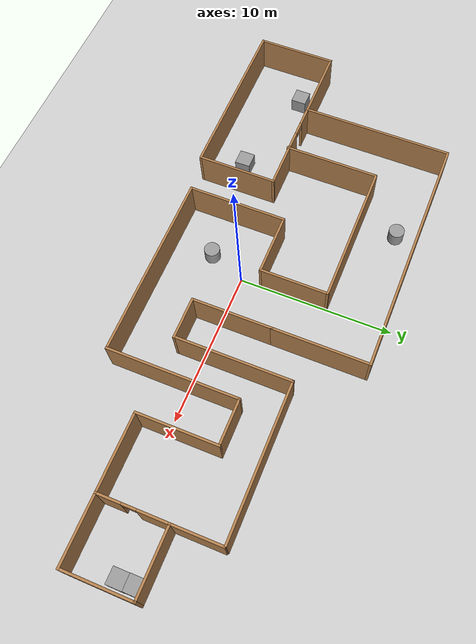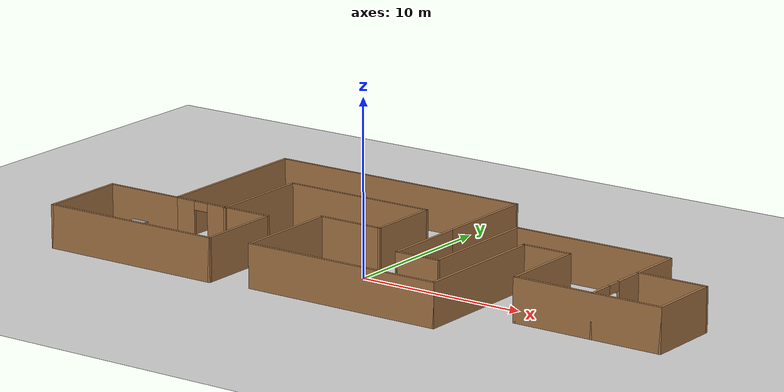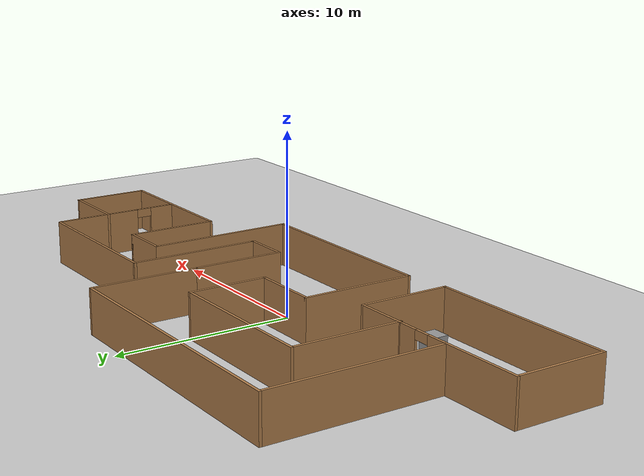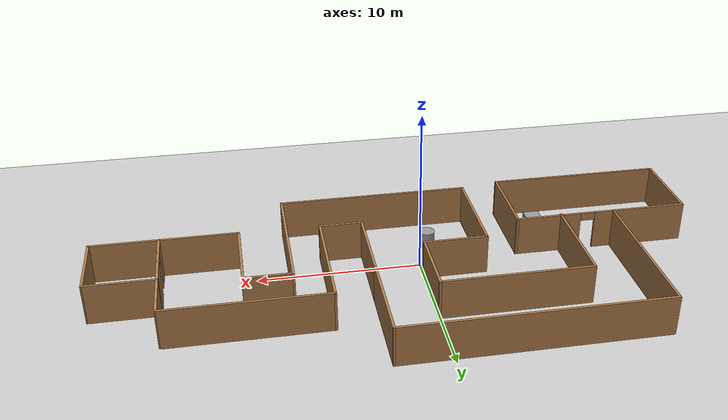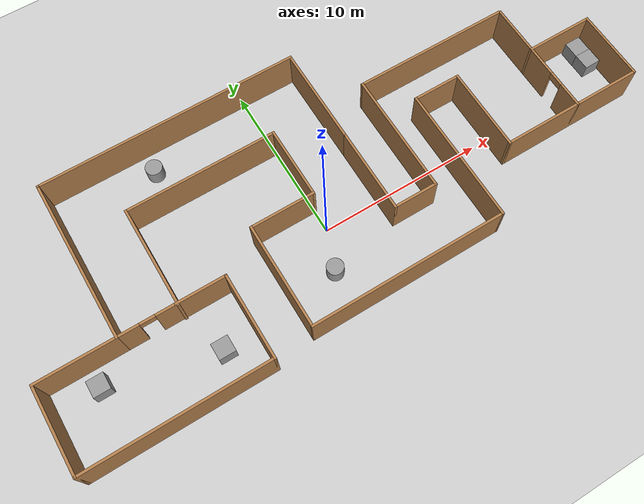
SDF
<sdf version="1.6">
 <world name="default">
  <light name="sun" type="directional">
   <pose>0 0 10 0 -0 0</pose>
   <diffuse>0.8 0.8 0.8 1</diffuse>
   <specular>0.2 0.2 0.2 1</specular>
   <attenuation>
    <range>1000</range>
    <constant>0.9</constant>
    <linear>0.01</linear>
    <quadratic>0.001</quadratic>
   </attenuation>
   <direction>-0.5 0.1 -0.9</direction>
  </light>
  <model name="ground_plane">
   <static>1</static>
   <link name="link">
    <collision name="collision">
     <geometry><plane><normal>0 0 1</normal><size>100 100</size></plane></geometry>
     <surface>
      <contact><collide_bitmask>65535</collide_bitmask></contact>
      <friction><ode><mu>100</mu><mu2>50</mu2></ode></friction>
     </surface>
    </collision>
    <visual name="visual">
     <cast_shadows>0</cast_shadows>
     <geometry><plane><normal>0 0 1</normal><size>100 100</size></plane></geometry>
     <material>
      <script><uri>file://media/materials/scripts/gazebo.material</uri><name>Gazebo/Grey</name></script>
     </material>
    </visual>
   </link>
  </model>
  <gravity>0 0 -9.8</gravity>
  <magnetic_field>6e-06 2.3e-05 -4.2e-05</magnetic_field>
  <atmosphere type="adiabatic"/>
  <physics name="default_physics" default="0" type="ode">
   <max_step_size>0.001</max_step_size>
   <real_time_factor>1</real_time_factor>
   <real_time_update_rate>1000</real_time_update_rate>
  </physics>
  <scene><ambient>0.4 0.4 0.4 1</ambient><background>0.7 0.7 0.7 1</background><shadows>1</shadows></scene>
  <audio><device>default</device></audio>
  <spherical_coordinates>
   <surface_model>EARTH_WGS84</surface_model>
   <latitude_deg>0</latitude_deg>
   <longitude_deg>0</longitude_deg>
   <elevation>0</elevation>
   <heading_deg>0</heading_deg>
  </spherical_coordinates>
  <model name="Untitled">
   <pose>1.328 2.08299 0 0 -0 0</pose>
   <link name="Wall_1">
    <collision name="Wall_1_Collision">
     <geometry><box><size>12 0.15 2.5</size></box></geometry>
     <pose>0 0 1.25 0 -0 0</pose>
    </collision>
    <visual name="Wall_1_Visual">
     <pose>0 0 1.25 0 -0 0</pose>
     <geometry><box><size>12 0.15 2.5</size></box></geometry>
     <material>
      <script><uri>file://media/materials/scripts/gazebo.material</uri><name>Gazebo/Wood</name></script>
      <ambient>1 1 1 1</ambient>
     </material>
     <meta><layer>0</layer></meta>
    </visual>
    <pose>0.788015 -7.05483 0 0 -0 0</pose>
   </link>
   <link name="Wall_11">
    <collision name="Wall_11_Collision">
     <geometry><box><size>4.5 0.15 2.5</size></box></geometry>
     <pose>0 0 1.25 0 -0 0</pose>
    </collision>
    <visual name="Wall_11_Visual">
     <pose>0 0 1.25 0 -0 0</pose>
     <geometry><box><size>4.5 0.15 2.5</size></box></geometry>
     <material>
      <script><uri>file://media/materials/scripts/gazebo.material</uri><name>Gazebo/Wood</name></script>
      <ambient>1 1 1 1</ambient>
     </material>
     <meta><layer>0</layer></meta>
    </visual>
    <pose>-1.28699 1.47017 0 0 -0 1.5708</pose>
   </link>
   <link name="Wall_12">
    <collision name="Wall_12_Collision">
     <geometry><box><size>9.25 0.15 2.5</size></box></geometry>
     <pose>0 0 1.25 0 -0 0</pose>
    </collision>
    <visual name="Wall_12_Visual">
     <pose>0 0 1.25 0 -0 0</pose>
     <geometry><box><size>9.25 0.15 2.5</size></box></geometry>
     <material>
      <script><uri>file://media/materials/scripts/gazebo.material</uri><name>Gazebo/Wood</name></script>
      <ambient>1 1 1 1</ambient>
     </material>
     <meta><layer>0</layer></meta>
    </visual>
    <pose>-5.83699 3.64517 0 0 -0 3.14159</pose>
   </link>
   <link name="Wall_14">
    <collision name="Wall_14_Collision">
     <geometry><box><size>6.25 0.15 2.5</size></box></geometry>
     <pose>0 0 1.25 0 -0 0</pose>
    </collision>
    <visual name="Wall_14_Visual">
     <pose>0 0 1.25 0 -0 0</pose>
     <geometry><box><size>6.25 0.15 2.5</size></box></geometry>
     <material>
      <script><uri>file://media/materials/scripts/gazebo.material</uri><name>Gazebo/Wood</name></script>
      <ambient>1 1 1 1</ambient>
     </material>
     <meta><layer>0</layer></meta>
    </visual>
    <pose>-10.387 0.595174 0 0 -0 -1.5708</pose>
   </link>
   <link name="Wall_18">
    <collision name="Wall_18_Collision">
     <geometry><box><size>7.5 0.15 2.5</size></box></geometry>
     <pose>0 0 1.25 0 -0 0</pose>
    </collision>
    <visual name="Wall_18_Visual">
     <pose>0 0 1.25 0 -0 0</pose>
     <geometry><box><size>7.5 0.15 2.5</size></box></geometry>
     <material>
      <script><uri>file://media/materials/scripts/gazebo.material</uri><name>Gazebo/Wood</name></script>
      <ambient>1 1 1 1</ambient>
     </material>
     <meta><layer>0</layer></meta>
    </visual>
    <pose>4.63029 0.025421 0 0 -0 -1.5708</pose>
   </link>
   <link name="Wall_21">
    <collision name="Wall_21_Collision">
     <geometry><box><size>2.75 0.15 2.5</size></box></geometry>
     <pose>0 0 1.25 0 -0 0</pose>
    </collision>
    <visual name="Wall_21_Visual">
     <pose>0 0 1.25 0 -0 0</pose>
     <geometry><box><size>2.75 0.15 2.5</size></box></geometry>
     <material>
      <script><uri>file://media/materials/scripts/gazebo.material</uri><name>Gazebo/Wood</name></script>
      <ambient>1 1 1 1</ambient>
     </material>
     <meta><layer>0</layer></meta>
    </visual>
    <pose>3.33698 -3.725 0 0 -0 0</pose>
   </link>
   <link name="Wall_25">
    <collision name="Wall_25_Collision">
     <geometry><box><size>8.5 0.15 2.5</size></box></geometry>
     <pose>0 0 1.25 0 -0 0</pose>
    </collision>
    <visual name="Wall_25_Visual">
     <pose>0 0 1.25 0 -0 0</pose>
     <geometry><box><size>8.5 0.15 2.5</size></box></geometry>
     <material>
      <script><uri>file://media/materials/scripts/gazebo.material</uri><name>Gazebo/Wood</name></script>
      <ambient>1 1 1 1</ambient>
     </material>
     <meta><layer>0</layer></meta>
    </visual>
    <pose>6.71302 -2.87983 0 0 -0 1.5708</pose>
   </link>
   <link name="Wall_27">
    <collision name="Wall_27_Collision">
     <geometry><box><size>3 0.15 2.5</size></box></geometry>
     <pose>0 0 1.25 0 -0 0</pose>
    </collision>
    <visual name="Wall_27_Visual">
     <pose>0 0 1.25 0 -0 0</pose>
     <geometry><box><size>3 0.15 2.5</size></box></geometry>
     <material>
      <script><uri>file://media/materials/scripts/gazebo.material</uri><name>Gazebo/Wood</name></script>
      <ambient>1 1 1 1</ambient>
     </material>
     <meta><layer>0</layer></meta>
    </visual>
    <pose>8.13801 1.29517 0 0 -0 0</pose>
   </link>
   <link name="Wall_28">
    <collision name="Wall_28_Collision">
     <geometry><box><size>5.25 0.15 2.5</size></box></geometry>
     <pose>0 0 1.25 0 -0 0</pose>
    </collision>
    <visual name="Wall_28_Visual">
     <pose>0 0 1.25 0 -0 0</pose>
     <geometry><box><size>5.25 0.15 2.5</size></box></geometry>
     <material>
      <script><uri>file://media/materials/scripts/gazebo.material</uri><name>Gazebo/Wood</name></script>
      <ambient>1 1 1 1</ambient>
     </material>
     <meta><layer>0</layer></meta>
    </visual>
    <pose>9.56302 -1.25483 0 0 -0 -1.5708</pose>
   </link>
   <link name="Wall_29">
    <collision name="Wall_29_Collision">
     <geometry><box><size>9 0.15 2.5</size></box></geometry>
     <pose>0 0 1.25 0 -0 0</pose>
    </collision>
    <visual name="Wall_29_Visual">
     <pose>0 0 1.25 0 -0 0</pose>
     <geometry><box><size>9 0.15 2.5</size></box></geometry>
     <material>
      <script><uri>file://media/materials/scripts/gazebo.material</uri><name>Gazebo/Wood</name></script>
      <ambient>1 1 1 1</ambient>
     </material>
     <meta><layer>0</layer></meta>
    </visual>
    <pose>13.988 -3.80483 0 0 -0 0</pose>
   </link>
   <link name="Wall_3">
    <collision name="Wall_3_Collision">
     <geometry><box><size>6.5 0.15 2.5</size></box></geometry>
     <pose>0 0 1.25 0 -0 0</pose>
    </collision>
    <visual name="Wall_3_Visual">
     <pose>0 0 1.25 0 -0 0</pose>
     <geometry><box><size>6.5 0.15 2.5</size></box></geometry>
     <material>
      <script><uri>file://media/materials/scripts/gazebo.material</uri><name>Gazebo/Wood</name></script>
      <ambient>1 1 1 1</ambient>
     </material>
     <meta><layer>0</layer></meta>
    </visual>
    <pose>-5.13699 -3.87983 0 0 -0 1.5708</pose>
   </link>
   <link name="Wall_30">
    <collision name="Wall_30_Collision">
     <geometry><box><size>4.5 0.15 2.5</size></box></geometry>
     <pose>0 0 1.25 0 -0 0</pose>
    </collision>
    <visual name="Wall_30_Visual">
     <pose>0 0 1.25 0 -0 0</pose>
     <geometry><box><size>4.5 0.15 2.5</size></box></geometry>
     <material>
      <script><uri>file://media/materials/scripts/gazebo.material</uri><name>Gazebo/Wood</name></script>
      <ambient>1 1 1 1</ambient>
     </material>
     <meta><layer>0</layer></meta>
    </visual>
    <pose>18.413 -1.62983 0 0 -0 1.5708</pose>
   </link>
   <link name="Wall_31">
    <collision name="Wall_31_Collision">
     <geometry><box><size>4.25 0.15 2.5</size></box></geometry>
     <pose>0 0 1.25 0 -0 0</pose>
    </collision>
    <visual name="Wall_31_Visual">
     <pose>0 0 1.25 0 -0 0</pose>
     <geometry><box><size>4.25 0.15 2.5</size></box></geometry>
     <material>
      <script><uri>file://media/materials/scripts/gazebo.material</uri><name>Gazebo/Wood</name></script>
      <ambient>1 1 1 1</ambient>
     </material>
     <meta><layer>0</layer></meta>
    </visual>
    <pose>16.363 0.545174 0 0 -0 3.14159</pose>
   </link>
   <link name="Wall_32">
    <pose>14.313 -1.62983 0 0 -0 -1.5708</pose>
    <visual name="Wall_32_Visual_0">
     <pose>-1.24722 0 1.25 0 -0 0</pose>
     <geometry><box><size>2.00556 0.15 2.5</size></box></geometry>
     <material>
      <script><uri>file://media/materials/scripts/gazebo.material</uri><name>Gazebo/Wood</name></script>
      <ambient>1 1 1 1</ambient>
     </material>
     <meta><layer>0</layer></meta>
    </visual>
    <collision name="Wall_32_Collision_0">
     <geometry><box><size>2.00556 0.15 2.5</size></box></geometry>
     <pose>-1.24722 0 1.25 0 -0 0</pose>
    </collision>
    <visual name="Wall_32_Visual_1">
     <pose>1.45278 0 1.25 0 -0 0</pose>
     <geometry><box><size>1.59444 0.15 2.5</size></box></geometry>
     <material>
      <script><uri>file://media/materials/scripts/gazebo.material</uri><name>Gazebo/Wood</name></script>
      <ambient>1 1 1 1</ambient>
     </material>
     <meta><layer>0</layer></meta>
    </visual>
    <collision name="Wall_32_Collision_1">
     <geometry><box><size>1.59444 0.15 2.5</size></box></geometry>
     <pose>1.45278 0 1.25 0 -0 0</pose>
    </collision>
    <visual name="Wall_32_Visual_2">
     <pose>0.205558 0 2.25 0 -0 0</pose>
     <geometry><box><size>0.9 0.15 0.5</size></box></geometry>
     <material>
      <script><uri>file://media/materials/scripts/gazebo.material</uri><name>Gazebo/Wood</name></script>
      <ambient>1 1 1 1</ambient>
     </material>
     <meta><layer>0</layer></meta>
    </visual>
    <collision name="Wall_32_Collision_2">
     <geometry><box><size>0.9 0.15 0.5</size></box></geometry>
     <pose>0.205558 0 2.25 0 -0 0</pose>
    </collision>
   </link>
   <link name="Wall_36">
    <collision name="Wall_36_Collision">
     <geometry><box><size>3.25 0.15 2.5</size></box></geometry>
     <pose>0 0 1.25 0 -0 0</pose>
    </collision>
    <visual name="Wall_36_Visual">
     <pose>0 0 1.25 0 -0 0</pose>
     <geometry><box><size>3.25 0.15 2.5</size></box></geometry>
     <material>
      <script><uri>file://media/materials/scripts/gazebo.material</uri><name>Gazebo/Wood</name></script>
      <ambient>1 1 1 1</ambient>
     </material>
     <meta><layer>0</layer></meta>
    </visual>
    <pose>14.313 2.09517 0 0 -0 1.5708</pose>
   </link>
   <link name="Wall_38">
    <collision name="Wall_38_Collision">
     <geometry><box><size>9.75 0.15 2.5</size></box></geometry>
     <pose>0 0 1.25 0 -0 0</pose>
    </collision>
    <visual name="Wall_38_Visual">
     <pose>0 0 1.25 0 -0 0</pose>
     <geometry><box><size>9.75 0.15 2.5</size></box></geometry>
     <material>
      <script><uri>file://media/materials/scripts/gazebo.material</uri><name>Gazebo/Wood</name></script>
      <ambient>1 1 1 1</ambient>
     </material>
     <meta><layer>0</layer></meta>
    </visual>
    <pose>9.43028 3.70042 0 0 -0 0</pose>
   </link>
   <link name="Wall_40">
    <collision name="Wall_40_Collision">
     <geometry><box><size>6.25 0.15 2.5</size></box></geometry>
     <pose>0 0 1.25 0 -0 0</pose>
    </collision>
    <visual name="Wall_40_Visual">
     <pose>0 0 1.25 0 -0 0</pose>
     <geometry><box><size>6.25 0.15 2.5</size></box></geometry>
     <material>
      <script><uri>file://media/materials/scripts/gazebo.material</uri><name>Gazebo/Wood</name></script>
      <ambient>1 1 1 1</ambient>
     </material>
     <meta><layer>0</layer></meta>
    </visual>
    <pose>2.03698 4.425 0 0 -0 1.5708</pose>
   </link>
   <link name="Wall_41">
    <collision name="Wall_41_Collision">
     <geometry><box><size>16 0.15 2.5</size></box></geometry>
     <pose>0 0 1.25 0 -0 0</pose>
    </collision>
    <visual name="Wall_41_Visual">
     <pose>0 0 1.25 0 -0 0</pose>
     <geometry><box><size>16 0.15 2.5</size></box></geometry>
     <material>
      <script><uri>file://media/materials/scripts/gazebo.material</uri><name>Gazebo/Wood</name></script>
      <ambient>1 1 1 1</ambient>
     </material>
     <meta><layer>0</layer></meta>
    </visual>
    <pose>-5.88802 7.475 0 0 -0 3.14159</pose>
   </link>
   <link name="Wall_42">
    <collision name="Wall_42_Collision">
     <geometry><box><size>10 0.15 2.5</size></box></geometry>
     <pose>0 0 1.25 0 -0 0</pose>
    </collision>
    <visual name="Wall_42_Visual">
     <pose>0 0 1.25 0 -0 0</pose>
     <geometry><box><size>10 0.15 2.5</size></box></geometry>
     <material>
      <script><uri>file://media/materials/scripts/gazebo.material</uri><name>Gazebo/Wood</name></script>
      <ambient>1 1 1 1</ambient>
     </material>
     <meta><layer>0</layer></meta>
    </visual>
    <pose>-13.813 2.55 0 0 -0 -1.5708</pose>
   </link>
   <link name="Wall_43">
    <pose>-12.138 -2.375 0 0 -0 0</pose>
    <visual name="Wall_43_Visual_0">
     <pose>-1.08094 0 1.25 0 -0 0</pose>
     <geometry><box><size>1.33812 0.15 2.5</size></box></geometry>
     <material>
      <script><uri>file://media/materials/scripts/gazebo.material</uri><name>Gazebo/Wood</name></script>
      <ambient>1 1 1 1</ambient>
     </material>
     <meta><layer>0</layer></meta>
    </visual>
    <collision name="Wall_43_Collision_0">
     <geometry><box><size>1.33812 0.15 2.5</size></box></geometry>
     <pose>-1.08094 0 1.25 0 -0 0</pose>
    </collision>
    <visual name="Wall_43_Visual_1">
     <pose>1.11906 0 1.25 0 -0 0</pose>
     <geometry><box><size>1.26188 0.15 2.5</size></box></geometry>
     <material>
      <script><uri>file://media/materials/scripts/gazebo.material</uri><name>Gazebo/Wood</name></script>
      <ambient>1 1 1 1</ambient>
     </material>
     <meta><layer>0</layer></meta>
    </visual>
    <collision name="Wall_43_Collision_1">
     <geometry><box><size>1.26188 0.15 2.5</size></box></geometry>
     <pose>1.11906 0 1.25 0 -0 0</pose>
    </collision>
    <visual name="Wall_43_Visual_2">
     <pose>0.038119 0 2.25 0 -0 0</pose>
     <geometry><box><size>0.9 0.15 0.5</size></box></geometry>
     <material>
      <script><uri>file://media/materials/scripts/gazebo.material</uri><name>Gazebo/Wood</name></script>
      <ambient>1 1 1 1</ambient>
     </material>
     <meta><layer>0</layer></meta>
    </visual>
    <collision name="Wall_43_Collision_2">
     <geometry><box><size>0.9 0.15 0.5</size></box></geometry>
     <pose>0.038119 0 2.25 0 -0 0</pose>
    </collision>
   </link>
   <link name="Wall_45">
    <collision name="Wall_45_Collision">
     <geometry><box><size>4.75 0.15 2.5</size></box></geometry>
     <pose>0 0 1.25 0 -0 0</pose>
    </collision>
    <visual name="Wall_45_Visual">
     <pose>0 0 1.25 0 -0 0</pose>
     <geometry><box><size>4.75 0.15 2.5</size></box></geometry>
     <material>
      <script><uri>file://media/materials/scripts/gazebo.material</uri><name>Gazebo/Wood</name></script>
      <ambient>1 1 1 1</ambient>
     </material>
     <meta><layer>0</layer></meta>
    </visual>
    <pose>-16.113 -2.375 0 0 -0 3.14159</pose>
   </link>
   <link name="Wall_46">
    <collision name="Wall_46_Collision">
     <geometry><box><size>5.25 0.15 2.5</size></box></geometry>
     <pose>0 0 1.25 0 -0 0</pose>
    </collision>
    <visual name="Wall_46_Visual">
     <pose>0 0 1.25 0 -0 0</pose>
     <geometry><box><size>5.25 0.15 2.5</size></box></geometry>
     <material>
      <script><uri>file://media/materials/scripts/gazebo.material</uri><name>Gazebo/Wood</name></script>
      <ambient>1 1 1 1</ambient>
     </material>
     <meta><layer>0</layer></meta>
    </visual>
    <pose>-18.413 -4.925 0 0 -0 -1.5708</pose>
   </link>
   <link name="Wall_47">
    <collision name="Wall_47_Collision">
     <geometry><box><size>11 0.15 2.5</size></box></geometry>
     <pose>0 0 1.25 0 -0 0</pose>
    </collision>
    <visual name="Wall_47_Visual">
     <pose>0 0 1.25 0 -0 0</pose>
     <geometry><box><size>11 0.15 2.5</size></box></geometry>
     <material>
      <script><uri>file://media/materials/scripts/gazebo.material</uri><name>Gazebo/Wood</name></script>
      <ambient>1 1 1 1</ambient>
     </material>
     <meta><layer>0</layer></meta>
    </visual>
    <pose>-12.988 -7.475 0 0 -0 0</pose>
   </link>
   <link name="Wall_48">
    <collision name="Wall_48_Collision">
     <geometry><box><size>5.25 0.15 2.5</size></box></geometry>
     <pose>0 0 1.25 0 -0 0</pose>
    </collision>
    <visual name="Wall_48_Visual">
     <pose>0 0 1.25 0 -0 0</pose>
     <geometry><box><size>5.25 0.15 2.5</size></box></geometry>
     <material>
      <script><uri>file://media/materials/scripts/gazebo.material</uri><name>Gazebo/Wood</name></script>
      <ambient>1 1 1 1</ambient>
     </material>
     <meta><layer>0</layer></meta>
    </visual>
    <pose>-7.56302 -4.925 0 0 -0 1.5708</pose>
   </link>
   <link name="Wall_49">
    <collision name="Wall_49_Collision">
     <geometry><box><size>3.05 0.15 2.5</size></box></geometry>
     <pose>0 0 1.25 0 -0 0</pose>
    </collision>
    <visual name="Wall_49_Visual">
     <pose>0 0 1.25 0 -0 0</pose>
     <geometry><box><size>3.05 0.15 2.5</size></box></geometry>
     <material>
      <script><uri>file://media/materials/scripts/gazebo.material</uri><name>Gazebo/Wood</name></script>
      <ambient>1 1 1 1</ambient>
     </material>
     <meta><layer>0</layer></meta>
    </visual>
    <pose>-9.01302 -2.375 0 0 -0 3.14159</pose>
   </link>
   <link name="Wall_7">
    <collision name="Wall_7_Collision">
     <geometry><box><size>5.25 0.15 2.5</size></box></geometry>
     <pose>0 0 1.25 0 -0 0</pose>
    </collision>
    <visual name="Wall_7_Visual">
     <pose>0 0 1.25 0 -0 0</pose>
     <geometry><box><size>5.25 0.15 2.5</size></box></geometry>
     <material>
      <script><uri>file://media/materials/scripts/gazebo.material</uri><name>Gazebo/Wood</name></script>
      <ambient>1 1 1 1</ambient>
     </material>
     <meta><layer>0</layer></meta>
    </visual>
    <pose>2.03698 -1.175 0 0 -0 -1.5708</pose>
   </link>
   <link name="Wall_9">
    <collision name="Wall_9_Collision">
     <geometry><box><size>4 0.15 2.5</size></box></geometry>
     <pose>0 0 1.25 0 -0 0</pose>
    </collision>
    <visual name="Wall_9_Visual">
     <pose>0 0 1.25 0 -0 0</pose>
     <geometry><box><size>4 0.15 2.5</size></box></geometry>
     <material>
      <script><uri>file://media/materials/scripts/gazebo.material</uri><name>Gazebo/Wood</name></script>
      <ambient>1 1 1 1</ambient>
     </material>
     <meta><layer>0</layer></meta>
    </visual>
    <pose>-3.21198 -0.704826 0 0 -0 0</pose>
   </link>
   <static>1</static>
  </model>
  <model name="ex1.model">
   <link name="link">
    <inertial>
     <mass>1</mass>
     <inertia>
      <ixx>0.166667</ixx>
      <ixy>0</ixy>
      <ixz>0</ixz>
      <iyy>0.166667</iyy>
      <iyz>0</iyz>
      <izz>0.166667</izz>
     </inertia>
    </inertial>
    <visual name="visual">
     <geometry><box><size>1 1 1</size></box></geometry>
     <material>
      <script><name>Gazebo/Grey</name><uri>file://media/materials/scripts/gazebo.material</uri></script>
     </material>
    </visual>
    <collision name="collision">
     <geometry><box><size>1 1 1</size></box></geometry>
     <surface>
      <friction>
       <ode><mu>1</mu><mu2>1</mu2><fdir1>0 0 0</fdir1><slip1>0</slip1><slip2>0</slip2></ode>
       <torsional>
        <coefficient>1</coefficient>
        <patch_radius>0</patch_radius>
        <surface_radius>0</surface_radius>
        <use_patch_radius>1</use_patch_radius>
        <ode><slip>0</slip></ode>
       </torsional>
      </friction>
      <bounce><restitution_coefficient>0</restitution_coefficient><threshold>1e+06</threshold></bounce>
      <contact>
       <collide_without_contact>0</collide_without_contact>
       <collide_without_contact_bitmask>1</collide_without_contact_bitmask>
       <collide_bitmask>1</collide_bitmask>
       <ode>
        <soft_cfm>0</soft_cfm>
        <soft_erp>0.2</soft_erp>
        <kp>1e+13</kp>
        <kd>1</kd>
        <max_vel>0.01</max_vel>
        <min_depth>0</min_depth>
       </ode>
       <bullet>
        <split_impulse>1</split_impulse>
        <split_impulse_penetration_threshold>-0.01</split_impulse_penetration_threshold>
        <soft_cfm>0</soft_cfm>
        <soft_erp>0.2</soft_erp>
        <kp>1e+13</kp>
        <kd>1</kd>
       </bullet>
      </contact>
     </surface>
    </collision>
   </link>
   <link name="link_0">
    <inertial>
     <mass>1</mass>
     <inertia><ixx>0.145833</ixx><ixy>0</ixy><ixz>0</ixz><iyy>0.145833</iyy><iyz>0</iyz><izz>0.125</izz></inertia>
    </inertial>
    <pose>1.61294 11.2922 0 0 -0 0</pose>
    <visual name="visual">
     <geometry><cylinder><radius>0.5</radius><length>1</length></cylinder></geometry>
     <material>
      <lighting>1</lighting>
      <script><uri>file://media/materials/scripts/gazebo.material</uri><name>Gazebo/Grey</name></script>
     </material>
    </visual>
    <collision name="collision">
     <geometry><cylinder><radius>0.5</radius><length>1</length></cylinder></geometry>
     <surface>
      <friction>
       <ode><mu>1</mu><mu2>1</mu2><fdir1>0 0 0</fdir1><slip1>0</slip1><slip2>0</slip2></ode>
       <torsional>
        <coefficient>1</coefficient>
        <patch_radius>0</patch_radius>
        <surface_radius>0</surface_radius>
        <use_patch_radius>1</use_patch_radius>
        <ode><slip>0</slip></ode>
       </torsional>
      </friction>
      <bounce><restitution_coefficient>0</restitution_coefficient><threshold>1e+06</threshold></bounce>
      <contact>
       <collide_without_contact>0</collide_without_contact>
       <collide_without_contact_bitmask>1</collide_without_contact_bitmask>
       <collide_bitmask>1</collide_bitmask>
       <ode>
        <soft_cfm>0</soft_cfm>
        <soft_erp>0.2</soft_erp>
        <kp>1e+13</kp>
        <kd>1</kd>
        <max_vel>0.01</max_vel>
        <min_depth>0</min_depth>
       </ode>
       <bullet>
        <split_impulse>1</split_impulse>
        <split_impulse_penetration_threshold>-0.01</split_impulse_penetration_threshold>
        <soft_cfm>0</soft_cfm>
        <soft_erp>0.2</soft_erp>
        <kp>1e+13</kp>
        <kd>1</kd>
       </bullet>
      </contact>
     </surface>
    </collision>
   </link>
   <link name="link_1">
    <inertial>
     <mass>1</mass>
     <inertia><ixx>0.145833</ixx><ixy>0</ixy><ixz>0</ixz><iyy>0.145833</iyy><iyz>0</iyz><izz>0.125</izz></inertia>
    </inertial>
    <pose>7.25456 0.758957 0 0 -0 0</pose>
    <visual name="visual">
     <geometry><cylinder><radius>0.5</radius><length>1</length></cylinder></geometry>
     <material>
      <lighting>1</lighting>
      <script><uri>file://media/materials/scripts/gazebo.material</uri><name>Gazebo/Grey</name></script>
     </material>
    </visual>
    <collision name="collision">
     <geometry><cylinder><radius>0.5</radius><length>1</length></cylinder></geometry>
     <surface>
      <friction>
       <ode><mu>1</mu><mu2>1</mu2><fdir1>0 0 0</fdir1><slip1>0</slip1><slip2>0</slip2></ode>
       <torsional>
        <coefficient>1</coefficient>
        <patch_radius>0</patch_radius>
        <surface_radius>0</surface_radius>
        <use_patch_radius>1</use_patch_radius>
        <ode><slip>0</slip></ode>
       </torsional>
      </friction>
      <bounce><restitution_coefficient>0</restitution_coefficient><threshold>1e+06</threshold></bounce>
      <contact>
       <collide_without_contact>0</collide_without_contact>
       <collide_without_contact_bitmask>1</collide_without_contact_bitmask>
       <collide_bitmask>1</collide_bitmask>
       <ode>
        <soft_cfm>0</soft_cfm>
        <soft_erp>0.2</soft_erp>
        <kp>1e+13</kp>
        <kd>1</kd>
        <max_vel>0.01</max_vel>
        <min_depth>0</min_depth>
       </ode>
       <bullet>
        <split_impulse>1</split_impulse>
        <split_impulse_penetration_threshold>-0.01</split_impulse_penetration_threshold>
        <soft_cfm>0</soft_cfm>
        <soft_erp>0.2</soft_erp>
        <kp>1e+13</kp>
        <kd>1</kd>
       </bullet>
      </contact>
     </surface>
    </collision>
   </link>
   <link name="link_2">
    <inertial>
     <mass>1</mass>
     <inertia>
      <ixx>0.166667</ixx>
      <ixy>0</ixy>
      <ixz>0</ixz>
      <iyy>0.166667</iyy>
      <iyz>0</iyz>
      <izz>0.166667</izz>
     </inertia>
    </inertial>
    <pose>27.1518 5.11795 0 0 -0 0</pose>
    <visual name="visual">
     <geometry><box><size>1 1 1</size></box></geometry>
     <material>
      <lighting>1</lighting>
      <script><uri>file://media/materials/scripts/gazebo.material</uri><name>Gazebo/Grey</name></script>
     </material>
    </visual>
    <collision name="collision">
     <geometry><box><size>1 1 1</size></box></geometry>
     <surface>
      <friction>
       <ode><mu>1</mu><mu2>1</mu2><fdir1>0 0 0</fdir1><slip1>0</slip1><slip2>0</slip2></ode>
       <torsional>
        <coefficient>1</coefficient>
        <patch_radius>0</patch_radius>
        <surface_radius>0</surface_radius>
        <use_patch_radius>1</use_patch_radius>
        <ode><slip>0</slip></ode>
       </torsional>
      </friction>
      <bounce><restitution_coefficient>0</restitution_coefficient><threshold>1e+06</threshold></bounce>
      <contact>
       <collide_without_contact>0</collide_without_contact>
       <collide_without_contact_bitmask>1</collide_without_contact_bitmask>
       <collide_bitmask>1</collide_bitmask>
       <ode>
        <soft_cfm>0</soft_cfm>
        <soft_erp>0.2</soft_erp>
        <kp>1e+13</kp>
        <kd>1</kd>
        <max_vel>0.01</max_vel>
        <min_depth>0</min_depth>
       </ode>
       <bullet>
        <split_impulse>1</split_impulse>
        <split_impulse_penetration_threshold>-0.01</split_impulse_penetration_threshold>
        <soft_cfm>0</soft_cfm>
        <soft_erp>0.2</soft_erp>
        <kp>1e+13</kp>
        <kd>1</kd>
       </bullet>
      </contact>
     </surface>
    </collision>
   </link>
   <link name="link_3">
    <inertial>
     <mass>1</mass>
     <inertia>
      <ixx>0.166667</ixx>
      <ixy>0</ixy>
      <ixz>0</ixz>
      <iyy>0.166667</iyy>
      <iyz>0</iyz>
      <izz>0.166667</izz>
     </inertia>
    </inertial>
    <pose>27.1665 4.13017 0 0 -0 0</pose>
    <visual name="visual">
     <geometry><box><size>1 1 1</size></box></geometry>
     <material>
      <lighting>1</lighting>
      <script><uri>file://media/materials/scripts/gazebo.material</uri><name>Gazebo/Grey</name></script>
     </material>
    </visual>
    <collision name="collision">
     <geometry><box><size>1 1 1</size></box></geometry>
     <surface>
      <friction>
       <ode><mu>1</mu><mu2>1</mu2><fdir1>0 0 0</fdir1><slip1>0</slip1><slip2>0</slip2></ode>
       <torsional>
        <coefficient>1</coefficient>
        <patch_radius>0</patch_radius>
        <surface_radius>0</surface_radius>
        <use_patch_radius>1</use_patch_radius>
        <ode><slip>0</slip></ode>
       </torsional>
      </friction>
      <bounce><restitution_coefficient>0</restitution_coefficient><threshold>1e+06</threshold></bounce>
      <contact>
       <collide_without_contact>0</collide_without_contact>
       <collide_without_contact_bitmask>1</collide_without_contact_bitmask>
       <collide_bitmask>1</collide_bitmask>
       <ode>
        <soft_cfm>0</soft_cfm>
        <soft_erp>0.2</soft_erp>
        <kp>1e+13</kp>
        <kd>1</kd>
        <max_vel>0.01</max_vel>
        <min_depth>0</min_depth>
       </ode>
       <bullet>
        <split_impulse>1</split_impulse>
        <split_impulse_penetration_threshold>-0.01</split_impulse_penetration_threshold>
        <soft_cfm>0</soft_cfm>
        <soft_erp>0.2</soft_erp>
        <kp>1e+13</kp>
        <kd>1</kd>
       </bullet>
      </contact>
     </surface>
    </collision>
   </link>
   <link name="link_6">
    <inertial>
     <mass>1</mass>
     <inertia>
      <ixx>0.166667</ixx>
      <ixy>0</ixy>
      <ixz>0</ixz>
      <iyy>0.166667</iyy>
      <iyz>0</iyz>
      <izz>0.166667</izz>
     </inertia>
    </inertial>
    <pose>-6.348 1.63279 0 0 -0 0</pose>
    <visual name="visual">
     <geometry><box><size>1 1 1</size></box></geometry>
     <material>
      <lighting>1</lighting>
      <script><uri>file://media/materials/scripts/gazebo.material</uri><name>Gazebo/Grey</name></script>
     </material>
    </visual>
    <collision name="collision">
     <geometry><box><size>1 1 1</size></box></geometry>
     <surface>
      <friction>
       <ode><mu>1</mu><mu2>1</mu2><fdir1>0 0 0</fdir1><slip1>0</slip1><slip2>0</slip2></ode>
       <torsional>
        <coefficient>1</coefficient>
        <patch_radius>0</patch_radius>
        <surface_radius>0</surface_radius>
        <use_patch_radius>1</use_patch_radius>
        <ode><slip>0</slip></ode>
       </torsional>
      </friction>
      <bounce><restitution_coefficient>0</restitution_coefficient><threshold>1e+06</threshold></bounce>
      <contact>
       <collide_without_contact>0</collide_without_contact>
       <collide_without_contact_bitmask>1</collide_without_contact_bitmask>
       <collide_bitmask>1</collide_bitmask>
       <ode>
        <soft_cfm>0</soft_cfm>
        <soft_erp>0.2</soft_erp>
        <kp>1e+13</kp>
        <kd>1</kd>
        <max_vel>0.01</max_vel>
        <min_depth>0</min_depth>
       </ode>
       <bullet>
        <split_impulse>1</split_impulse>
        <split_impulse_penetration_threshold>-0.01</split_impulse_penetration_threshold>
        <soft_cfm>0</soft_cfm>
        <soft_erp>0.2</soft_erp>
        <kp>1e+13</kp>
        <kd>1</kd>
       </bullet>
      </contact>
     </surface>
    </collision>
   </link>
   <static>0</static>
   <pose>-8.15593 -3.13191 0.5 0 -0 0</pose>
  </model>
 </world>
</sdf>
